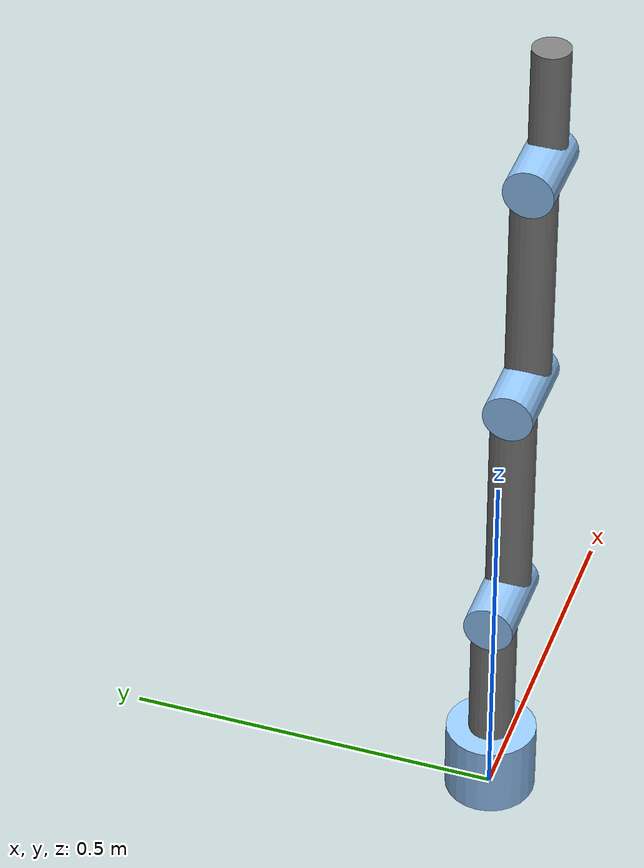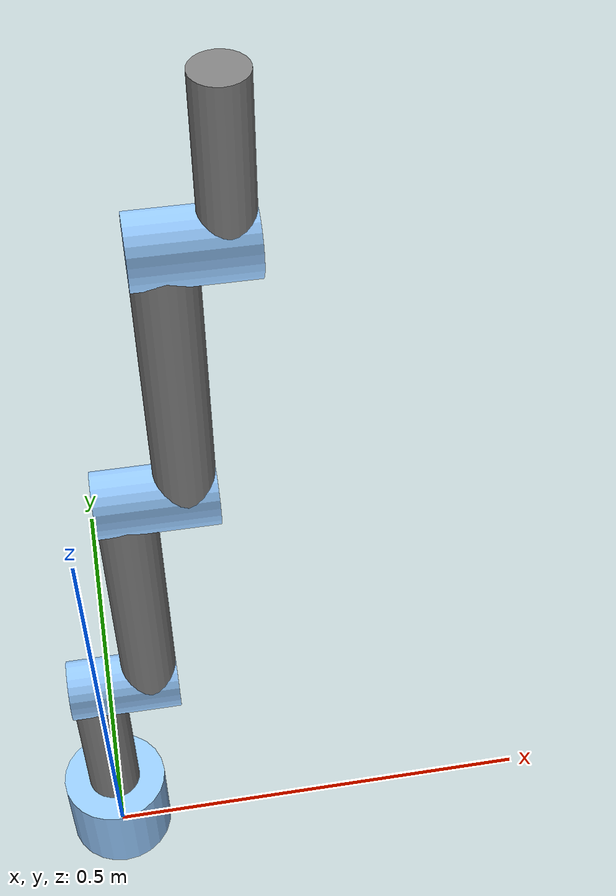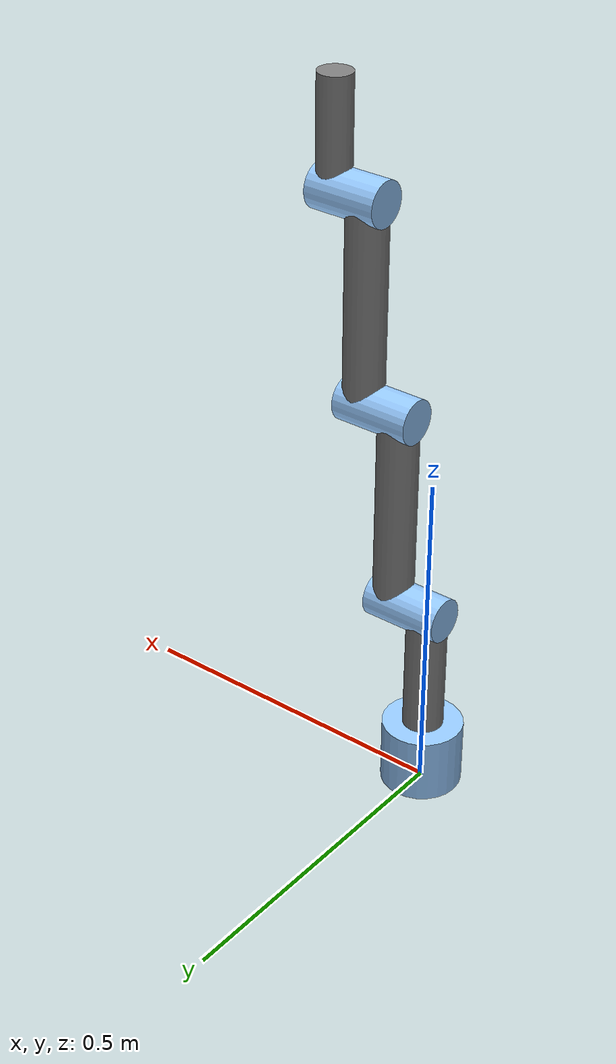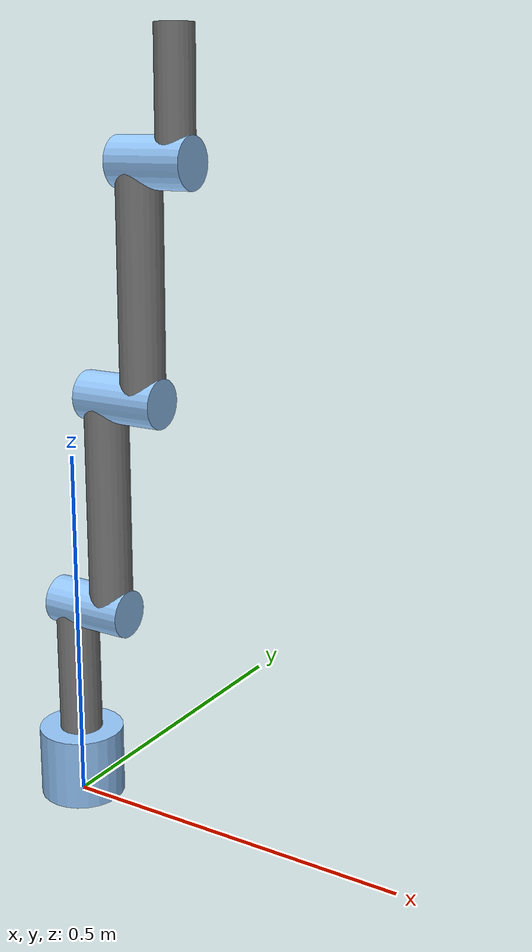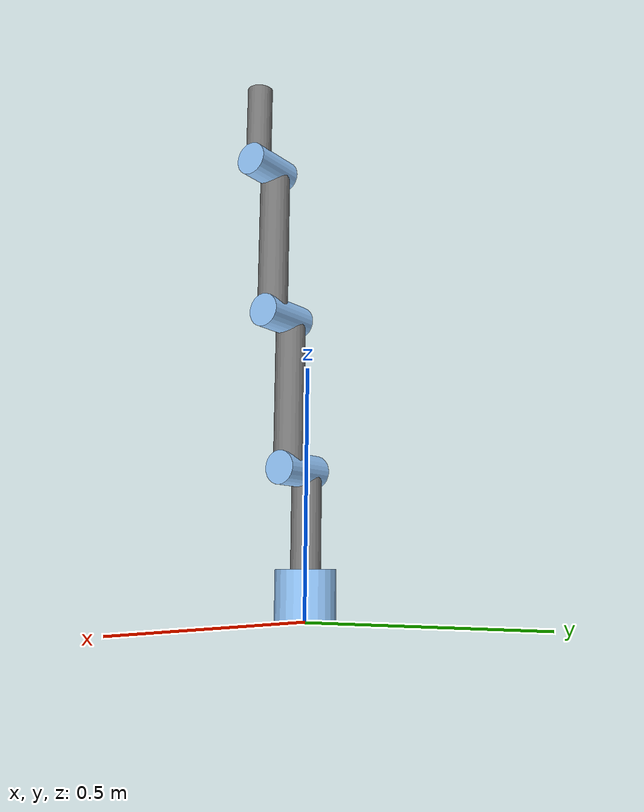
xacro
<?xml version="1.0"?>

<!-- Make the namespace of the robot -->
<robot xmlns:xacro="http://www.ros.org/wiki/xacro" name="marvin_arm">
    <!-- Define constants -->
    <xacro:property name="link_type" value="cuboidal" />
    <xacro:property name="M_PI" value="3.14159"/>

    <xacro:property name="mass_1" value="20" />
    <xacro:property name="mass_2" value="5" />
    <xacro:property name="mass_3" value="3" />
    <xacro:property name="mass_4" value="3" />
    <xacro:property name="mass_5" value="2.5" />
    <xacro:property name="mass_6" value="0.2" />

    <xacro:property name="radius_1" value="0.06" />     <!--base_link radius-->
    <xacro:property name="radius_2" value="0.03" />     <!--link_1 radius-->
    <xacro:property name="radius_3" value="0.03" />     <!--link_2 radius-->
    <xacro:property name="radius_4" value="0.03" />     <!--link_3 radius-->
    <xacro:property name="radius_5" value="0.025" />    <!--link_4 radius-->

    <xacro:property name="length_1" value="0.1" />      <!--base_link length-->
    <xacro:property name="length_2" value="0.2" />      <!--link_1 length-->
    <xacro:property name="length_3" value="0.3" />     <!--link_2 length-->
    <xacro:property name="length_4" value="0.3" />     <!--link_3 length-->
    <xacro:property name="length_5" value="0.15" />      <!--link_4 length-->

    <!-- Define Rviz colors -->
    <material name="Black">
        <color rgba="0.0 0.0 0.0 1.0"/>
    </material>
    <material name="Red">
        <color rgba="0.8 0.0 0.0 1.0"/>
    </material>
    <material name="Blue">
        <color rgba="0.0 0.0 1.0 1.0"/>
    </material>
    <material name="LightBlue">
        <color rgba="0.589 0.793 1.0 1.0"/>
    </material>
    <material name="Grey">
        <color rgba="0.5 0.5 0.5 1.0"/>
    </material>
    <material name="White">
        <color rgba="1.0 1.0 1.0 1.0"/>
    </material>

    <!-- Macros for inertia -->
    <xacro:macro name="inertial_block" params="mass length radius">
        <inertial>
            <origin xyz="0 0 ${length/2}" rpy="0 0 0"/>
            <mass value="${mass}"/>
            <inertia
                ixx="${mass / 12.0 * (2*radius*2*radius + length*length)}" ixy="0.0" ixz="0.0"
                iyy="${mass / 12.0 * (length*length + 2*radius*2*radius)}" iyz="0.0"
                izz="${mass / 12.0 * (2*radius*2*radius + 2*radius*2*radius)}" />
        </inertial>
    </xacro:macro>

    <!-- Macros for transmission -->
    <xacro:macro name="transmission_block" params="joint_name">
        <transmission name="tran1">
            <type>transmission_interface/SimpleTransmission</type>
            <joint name="${joint_name}">
                <hardwareInterface>hardware_interface/PositionJointInterface</hardwareInterface>
            </joint>
            <actuator name="motor1">
                <hardwareInterface>hardware_interface/PositionJointInterface</hardwareInterface>
                <mechanicalReduction>1</mechanicalReduction>
            </actuator>
        </transmission>
    </xacro:macro>

    <!-- Define Gazebo colors -->
    <xacro:macro name="gazebo_grey_link_color_block" params="link_name">
        <gazebo reference="${link_name}">
            <visual>
                <material>
                    <ambient>0.5 0.5 0.5 1.0</ambient>
                    <diffuse>0.56666695 0.56666695 0.56666695 1.0</diffuse>
                    <specular>0.6000003 0.6000003 0.6000003 1.0</specular>
                </material>
            </visual>
        </gazebo>
    </xacro:macro>

    <xacro:macro name="gazebo_blue_link_color_block" params="link_name">
        <gazebo reference="${link_name}">
            <visual>
                <material>
                    <ambient>0.589 0.793 1.0 1.0</ambient>
                    <diffuse>0.56666695 0.56666695 0.56666695 1.0</diffuse>
                    <specular>0.6000003 0.6000003 0.6000003 1.0</specular>
                </material>
            </visual>
        </gazebo>
    </xacro:macro>

    <!-- world link -->
    <link name="world"/>
    <joint name="world_joint" type="fixed">
        <origin xyz="0.0 0.0 0.0" rpy="0.0 0.0 0.0"/>
        <parent link="world"/>
        <child link="base_link"/>
    </joint>

    <!-- base_link -->
    <link name="base_link">
        <xacro:inertial_block mass="${mass_1}" length="${length_1}" radius="${radius_1}"/>
        <visual>
            <origin xyz="0.0 0.0 ${length_1/2.0}" rpy="0.0 0.0 0.0"/>
            <geometry>
                <cylinder radius="${radius_1}" length="${length_1}"/>
            </geometry>
            <material name="LightBlue"/>
        </visual>
        <collision>
            <origin xyz="0.0 0.0 ${length_1/2.0}" rpy="0.0 0.0 0.0"/>
            <geometry>
                <cylinder radius="${radius_1}" length="${length_1}"/>
            </geometry>
        </collision>
    </link>

    <xacro:gazebo_blue_link_color_block link_name="base_link"/>

    <joint name="joint_1" type="revolute">
        <origin xyz="0.0 0.0 ${length_1}" rpy="0.0 0.0 0.0"/>
        <parent link="base_link"/>
        <child link="link_1"/>
        <axis xyz="0.0 0.0 1"/>
        <limit lower="0.0" upper="${M_PI * 2}" effort="300.0" velocity="1.0"/>
    </joint>

    <!-- link_1 -->
    <link name="link_1">
        <xacro:inertial_block mass="${mass_2}" length="${length_2}" radius="${radius_2}"/>
        <visual>
            <origin xyz="0.0 0.0 ${length_2/2.0}" rpy="0.0 0.0 0.0"/>
            <geometry>
                <cylinder radius="${radius_2}" length="${length_2}"/>
            </geometry>
            <material name="Grey"/>
        </visual>
        <collision>
            <origin xyz="0.0 0.0 ${length_2/2.0}" rpy="0.0 0.0 0.0"/>
            <geometry>
                <cylinder radius="${radius_2}" length="${length_2}"/>
            </geometry>
        </collision>
    </link>

    <xacro:gazebo_grey_link_color_block link_name="link_1"/>

    <!-- Intermediate link 1 -->
    <link name="link_1_endlink">
        <xacro:inertial_block mass="${mass_2/3.0}" length="${2*radius_2+2*radius_3}" radius="${radius_2}"/>
        <visual>
            <origin xyz="0.0 0.0 ${(2*radius_2+2*radius_3)/2.0}" rpy="0.0 0.0 0.0"/>
            <geometry>
                <cylinder radius="${radius_2*1.1}" length="${2*radius_2+2*radius_3}"/>
            </geometry>
            <material name="LightBlue"/>
        </visual>
        <collision>
            <origin xyz="0.0 0.0 ${(2*radius_2+2*radius_3)/2.0}" rpy="0.0 0.0 0.0"/>
            <geometry>
                <cylinder radius="${radius_2*1.1}" length="${2*radius_2+2*radius_3}"/>
            </geometry>
        </collision>
    </link>

    <xacro:gazebo_blue_link_color_block link_name="link_1_endlink"/>

    <joint name="link_1_endjoint" type="fixed">
        <origin xyz="${-radius_2} 0.0 ${length_2 - 0.01}" rpy="0.0 ${M_PI/2.0} 0.0"/>
        <parent link="link_1"/>
        <child link="link_1_endlink"/>
    </joint>

    <gazebo reference="link_1_endjoint">
        <disableFixedJointLumping>true</disableFixedJointLumping>
        <preserveFixedJoint>true</preserveFixedJoint>
    </gazebo>

    <joint name="joint_2" type="revolute">
        <origin xyz="${radius_2 + radius_3} 0.0 ${length_2}" rpy="0.0 0.0 0.0"/>
        <parent link="link_1"/>
        <child link="link_2"/>
        <axis xyz="1.0 0.0 0.0"/>
        <limit lower="0.0" upper="${M_PI * 2}" effort="300.0" velocity="1.0"/>
    </joint>

    <!-- link_2 -->
    <link name="link_2">
        <xacro:inertial_block mass="${mass_3}" length="${length_3}" radius="${radius_3}"/>
        <visual>
            <origin xyz="0.0 0.0 ${length_3/2.0}" rpy="0.0 0.0 0.0"/>
            <geometry>
                <cylinder radius="${radius_3}" length="${length_3}"/>
            </geometry>
            <material name="Grey"/>
        </visual>
        <collision>
            <origin xyz="0.0 0.0 ${length_3/2.0}" rpy="0.0 0.0 0.0"/>
            <geometry>
                <cylinder radius="${radius_3}" length="${length_3}"/>
            </geometry>
        </collision>
    </link>

    <xacro:gazebo_grey_link_color_block link_name="link_2"/>

    <!-- Intermediate link 2 -->
    <link name="link_2_endlink">
        <xacro:inertial_block mass="${mass_3/3.0}" length="${2*radius_3+2*radius_4}" radius="${radius_3}"/>
        <visual>
            <origin xyz="0.0 0.0 ${(2*radius_3+2*radius_4)/2.0}" rpy="0.0 0.0 0.0"/>
            <geometry>
                <cylinder radius="${radius_3*1.1}" length="${2*radius_3+2*radius_4}"/>
            </geometry>
            <material name="LightBlue"/>
        </visual>
        <collision>
            <origin xyz="0.0 0.0 ${(2*radius_3+2*radius_4)/2.0}" rpy="0.0 0.0 0.0"/>
            <geometry>
                <cylinder radius="${radius_3*1.1}" length="${2*radius_3+2*radius_4}"/>
            </geometry>
        </collision>
    </link>

    <xacro:gazebo_blue_link_color_block link_name="link_2_endlink"/>

    <joint name="link_2_endjoint" type="fixed">
        <origin xyz="${-radius_3} 0.0 ${length_3 - 0.01}" rpy="0.0 ${M_PI/2.0} 0.0"/>
        <parent link="link_2"/>
        <child link="link_2_endlink"/>
    </joint>

    <gazebo reference="link_2_endjoint">
        <disableFixedJointLumping>true</disableFixedJointLumping>
        <preserveFixedJoint>true</preserveFixedJoint>
    </gazebo>

    <joint name="joint_3" type="revolute">
        <origin xyz="${radius_3 + radius_4} 0.0 ${length_3}" rpy="0.0 0.0 0.0"/>
        <parent link="link_2"/>
        <child link="link_3"/>
        <axis xyz="1.0 0.0 0.0"/>
        <limit lower="0.0" upper="${M_PI * 2}" effort="300.0" velocity="1.0"/>
    </joint>

    <!-- link_3 -->
    <link name="link_3">
        <xacro:inertial_block mass="${mass_4}" length="${length_4}" radius="${radius_4}"/>
        <visual>
            <origin xyz="0.0 0.0 ${length_4/2.0}" rpy="0.0 0.0 0.0"/>
            <geometry>
                <cylinder radius="${radius_4}" length="${length_4}"/>
            </geometry>
            <material name="Grey"/>
        </visual>
        <collision>
            <origin xyz="0.0 0.0 ${length_4/2.0}" rpy="0.0 0.0 0.0"/>
            <geometry>
                <cylinder radius="${radius_4}" length="${length_4}"/>
            </geometry>
        </collision>
    </link>

    <xacro:gazebo_grey_link_color_block link_name="link_3"/>

    <!-- Intermediate link 3 -->
    <link name="link_3_endlink">
        <xacro:inertial_block mass="${mass_4/3.0}" length="${2*radius_4+2*radius_5}" radius="${radius_4}"/>
        <visual>
            <origin xyz="0.0 0.0 ${(2*radius_4+2*radius_5)/2.0}" rpy="0.0 0.0 0.0"/>
            <geometry>
                <cylinder radius="${radius_4*1.1}" length="${2*radius_4+2*radius_5}"/>
            </geometry>
            <material name="LightBlue"/>
        </visual>
        <collision>
            <origin xyz="0.0 0.0 ${(2*radius_4+2*radius_5)/2.0}" rpy="0.0 0.0 0.0"/>
            <geometry>
                <cylinder radius="${radius_4*1.1}" length="${2*radius_4+2*radius_5}"/>
            </geometry>
        </collision>
    </link>

    <xacro:gazebo_blue_link_color_block link_name="link_3_endlink"/>

    <joint name="link_3_endjoint" type="fixed">
        <origin xyz="${-radius_4} 0.0 ${length_4 - 0.01}" rpy="0.0 ${M_PI/2.0} 0.0"/>
        <parent link="link_3"/>
        <child link="link_3_endlink"/>
    </joint>

    <gazebo reference="link_3_endjoint">
        <disableFixedJointLumping>true</disableFixedJointLumping>
        <preserveFixedJoint>true</preserveFixedJoint>
    </gazebo>

    <joint name="joint_4" type="revolute">
        <origin xyz="${radius_4 + radius_5} 0.0 ${length_4}" rpy="0.0 0.0 0.0"/>
        <parent link="link_3"/>
        <child link="link_4"/>
        <axis xyz="1.0 0.0 0.0"/>
        <limit lower="0.0" upper="${M_PI * 2}" effort="300.0" velocity="1.0"/>
    </joint>

    <!-- link_3 -->
    <link name="link_4">
        <xacro:inertial_block mass="${mass_5}" length="${length_5}" radius="${radius_5}"/>
        <visual>
            <origin xyz="0.0 0.0 ${length_5/2.0}" rpy="0.0 0.0 0.0"/>
            <geometry>
                <cylinder radius="${radius_5}" length="${length_5}"/>
            </geometry>
            <material name="Grey"/>
        </visual>
        <collision>
            <origin xyz="0.0 0.0 ${length_5/2.0}" rpy="0.0 0.0 0.0"/>
            <geometry>
                <cylinder radius="${radius_5}" length="${length_5}"/>
            </geometry>
        </collision>
    </link>

    <xacro:gazebo_grey_link_color_block link_name="link_4"/>

    <!-- Transmissions for ros control -->
    <xacro:transmission_block joint_name="joint_1"/>
    <xacro:transmission_block joint_name="joint_2"/>
    <xacro:transmission_block joint_name="joint_3"/>
    <xacro:transmission_block joint_name="joint_4"/>

    <!-- ros_control plugin -->
    <gazebo>
        <plugin name="gazebo_ros_control" filename="libgazebo_ros_control.so">
            <robotNamespace>/marvin_arm</robotNamespace>
        </plugin>
    </gazebo>
</robot>
